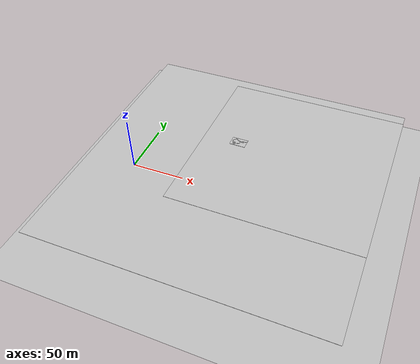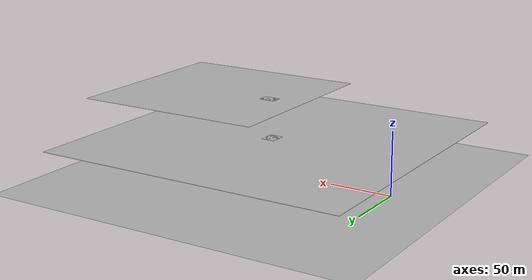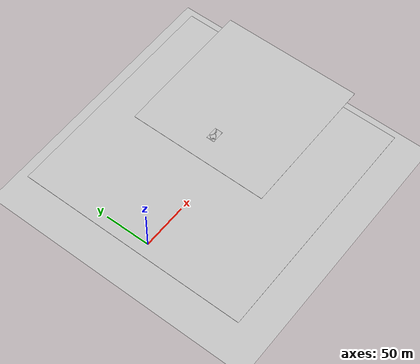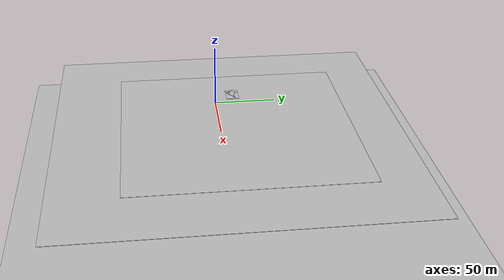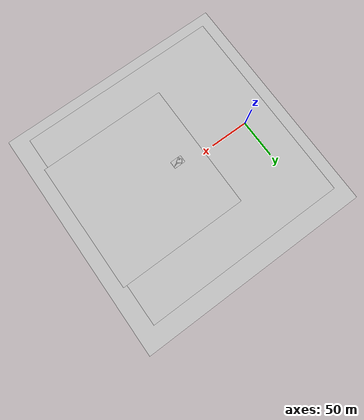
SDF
<?xml version='1.0'?>
<sdf version="1.6">
  <world name="empty">

    <physics name="1ms" type="ignored">
      <max_step_size>0.001</max_step_size>
      <real_time_factor>10.0</real_time_factor>
    </physics>

    <plugin
      filename="gz-sim-physics-system"
      name="gz::sim::systems::Physics">
    </plugin>
    <plugin
        filename="gz-sim-sensors-system"
        name="gz::sim::systems::Sensors">
        <render_engine>ogre2</render_engine>
    </plugin>
    <plugin
      filename="gz-sim-user-commands-system"
      name="gz::sim::systems::UserCommands">
    </plugin>
    <plugin
      filename="gz-sim-scene-broadcaster-system"
      name="gz::sim::systems::SceneBroadcaster">
    </plugin>

    <light type
="directional" name="sun">
      <cast_shadows>true</cast_shadows>
      <pose>0 0 10 0 0 0</pose>
      <diffuse>1 1 1 1</diffuse>
      <specular>0.5 0.5 0.5 1</specular>
      <attenuation>
        <range>1000</range>
        <constant>0.9</constant>
        <linear>0.01</linear>
        <quadratic>0.001</quadratic>
      </attenuation>
      <direction>-0.5 0.1 -0.9</direction>
    </light>

    <model name="austin_ground_plane">
      <pose>100 0 0 0 0 0</pose>
      <static>true</static>
      <link name="link">
        <collision name="collision">
          <geometry>
            <plane>
              <normal>0 0 1</normal>
              <size>250 250</size>
            </plane>
          </geometry>
          <surface>
            <friction>
              <ode>
                <mu>50</mu>
              </ode>
              <bullet>
                <friction>1</friction>
                <rolling_friction>0.1</rolling_friction>
              </bullet>
            </friction>
          </surface>
        </collision>
        <visual name="visual">
          <geometry>
            <plane>
              <normal>0 0 1</normal>
              <size>250 250</size>
            </plane>
          </geometry>
          <material>
            <ambient>0.8 0.8 0.8 1</ambient>
            <diffuse>0.8 0.8 0.8 1</diffuse>
            <specular>0.8 0.8 0.8 1</specular>
          </material>
        </visual>
      </link>
    </model>
    <model name="austin_track">
        <static>true</static>
        <link name="track">
            <visual name='track_vis'>
                <geometry>
                    <mesh>
                        <uri>/home/anyone/autonomous_f1tenth/src/environments/meshes/austin_track.stl</uri>
                        <scale>0.001 0.001 0.001</scale>
                    </mesh>
                </geometry>
                <material>
                    <ambient>0.8 0.8 0.8 1</ambient>
                    <diffuse>0.8 0.8 0.8 1</diffuse>
                    <specular>0.8 0.8 0.8 1</specular>
                </material>
            </visual>
            <collision name='track_col'>
                <geometry>
                    <mesh>
                        <uri>/home/anyone/autonomous_f1tenth/src/environments/meshes/austin_track.stl</uri>
                        <scale>0.001 0.001 0.001</scale>
                    </mesh>
                </geometry>
            </collision>
        </link>
    </model>

    <model name="budapest_ground_plane">
      <pose>100 0 30 0 0 0</pose>
      <static>true</static>
      <link name="link">
        <collision name="collision">
          <geometry>
            <plane>
              <normal>0 0 1</normal>
              <size>250 250</size>
            </plane>
          </geometry>
          <surface>
            <friction>
              <ode>
                <mu>50</mu>
              </ode>
              <bullet>
                <friction>1</friction>
                <rolling_friction>0.1</rolling_friction>
              </bullet>
            </friction>
          </surface>
        </collision>
        <visual name="visual">
          <geometry>
            <plane>
              <normal>0 0 1</normal>
              <size>250 250</size>
            </plane>
          </geometry>
          <material>
            <ambient>0.8 0.8 0.8 1</ambient>
            <diffuse>0.8 0.8 0.8 1</diffuse>
            <specular>0.8 0.8 0.8 1</specular>
          </material>
        </visual>
      </link>
    </model>
    <model name="budapest_track">
        <pose>100 0 30 0 0 0</pose>
        <static>true</static>
        <link name="track">
            <visual name='track_vis'>
                <geometry>
                    <mesh>
                        <uri>/home/anyone/autonomous_f1tenth/src/environments/meshes/budapest_track.stl</uri>
                        <scale>0.001 0.001 0.001</scale>
                    </mesh>
                </geometry>
                <material>
                    <ambient>0.8 0.8 0.8 1</ambient>
                    <diffuse>0.8 0.8 0.8 1</diffuse>
                    <specular>0.8 0.8 0.8 1</specular>
                </material>
            </visual>
            <collision name='track_col'>
                <geometry>
                    <mesh>
                        <uri>/home/anyone/autonomous_f1tenth/src/environments/meshes/budapest_track.stl</uri>
                        <scale>0.001 0.001 0.001</scale>
                    </mesh>
                </geometry>
            </collision>
        </link>
    </model>

    <model name="hockenheim_ground_plane">
      <pose>150 0 60 0 0 0</pose>
      <static>true</static>
      <link name="link">
        <collision name="collision">
          <geometry>
            <plane>
              <normal>0 0 1</normal>
              <size>150 150</size>
            </plane>
          </geometry>
          <surface>
            <friction>
              <ode>
                <mu>50</mu>
              </ode>
              <bullet>
                <friction>1</friction>
                <rolling_friction>0.1</rolling_friction>
              </bullet>
            </friction>
          </surface>
        </collision>
        <visual name="visual">
          <geometry>
            <plane>
              <normal>0 0 1</normal>
              <size>150 150</size>
            </plane>
          </geometry>
          <material>
            <ambient>0.8 0.8 0.8 1</ambient>
            <diffuse>0.8 0.8 0.8 1</diffuse>
            <specular>0.8 0.8 0.8 1</specular>
          </material>
        </visual>
      </link>
    </model>
    <model name="hockenheim_track">
        <static>true</static>
        <pose>100 0 60 0 0 0</pose>
        <link name="track">
            <visual name='track_vis'>
                <geometry>
                    <mesh>
                        <uri>/home/anyone/autonomous_f1tenth/src/environments/meshes/hockenheim_track.stl</uri>
                        <scale>0.001 0.001 0.001</scale>
                    </mesh>
                </geometry>
                <material>
                    <ambient>0.8 0.8 0.8 1</ambient>
                    <diffuse>0.8 0.8 0.8 1</diffuse>
                    <specular>0.8 0.8 0.8 1</specular>
                </material>
            </visual>
            <collision name='track_col'>
                <geometry>
                    <mesh>
                        <uri>/home/anyone/autonomous_f1tenth/src/environments/meshes/hockenheim_track.stl</uri>
                        <scale>0.001 0.001 0.001</scale>
                    </mesh>
                </geometry>
            </collision>
        </link>
    </model>
  </world>
</sdf>
